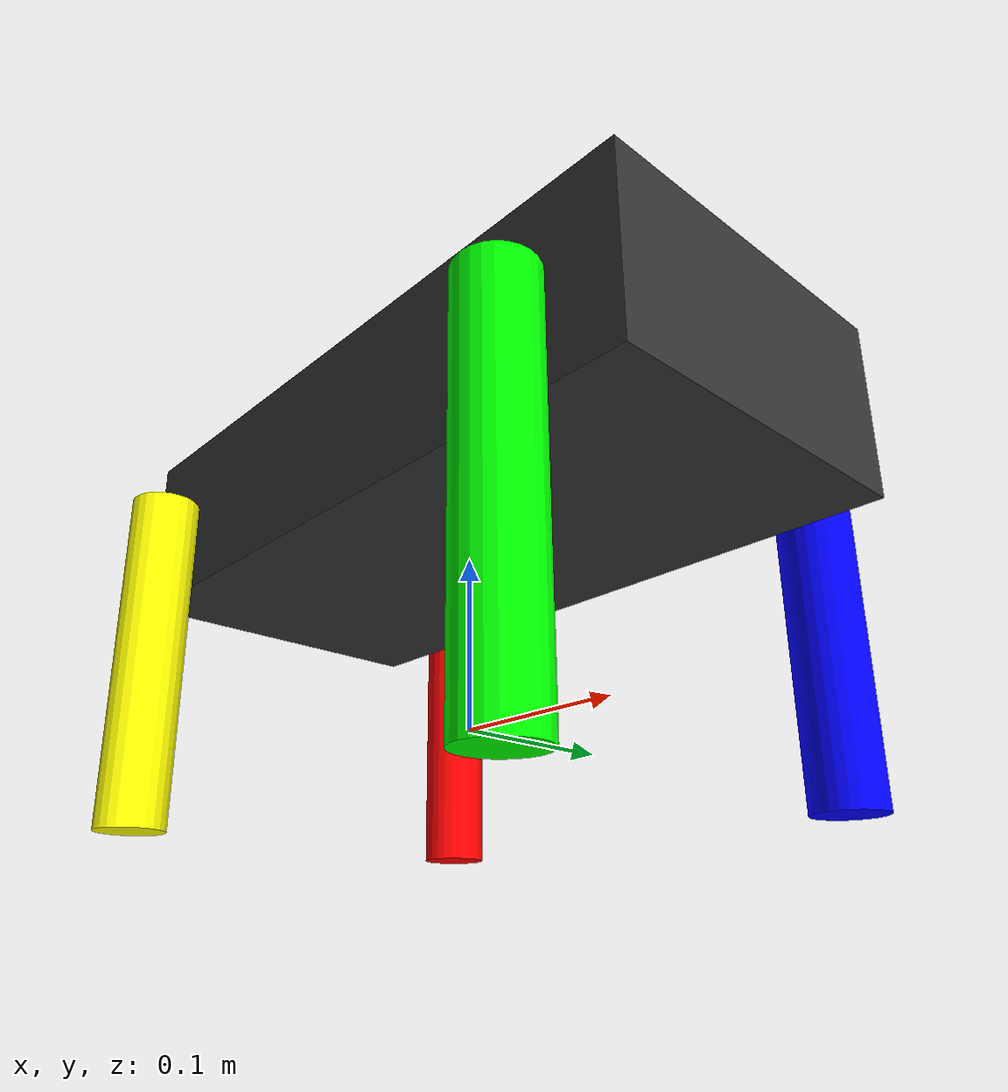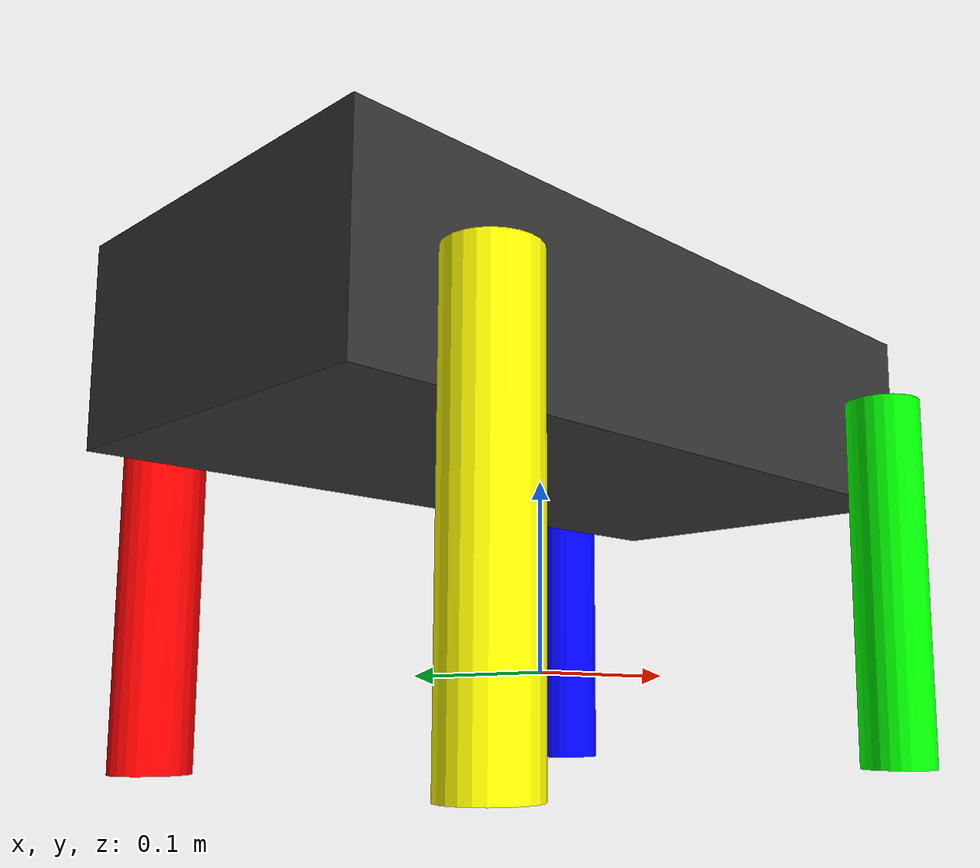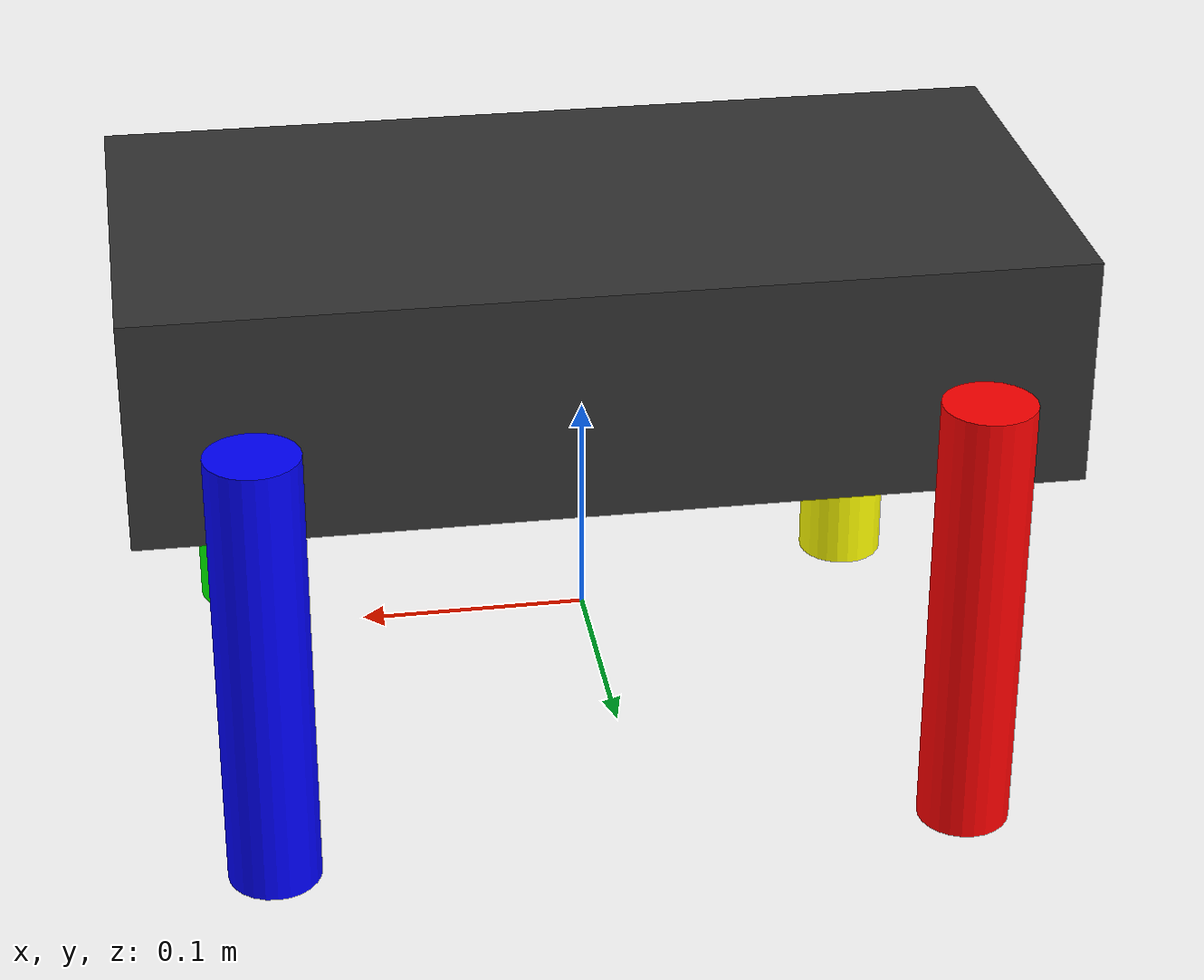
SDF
<?xml version="1.0" ?>
<sdf version="1.7">
  <model name="robot_dog">
    <static>false</static>

    <link name="base_link">
      <pose>0 0 0.15 0 0 0</pose>
      <inertial>
        <mass>3.0</mass>
        <inertia>
          <ixx>0.02</ixx><iyy>0.08</iyy><izz>0.09</izz>
          <ixy>0</ixy><ixz>0</ixz><iyz>0</iyz>
        </inertia>
      </inertial>
      <visual name="base_vis">
        <geometry><box><size>0.4 0.2 0.1</size></box></geometry>
        <material><ambient>0.2 0.2 0.2 1</ambient><diffuse>0.2 0.2 0.2 1</diffuse></material>
      </visual>
      <collision name="base_col">
        <geometry><box><size>0.4 0.2 0.1</size></box></geometry>
      </collision>
    </link>

    <!-- Front Left -->
    <joint name="joint_fl" type="revolute">
      <pose relative_to="base_link">0.15 0.12 0 0 0 0</pose>
      <parent>base_link</parent>
      <child>leg_fl</child>
      <axis>
        <xyz>0 1 0</xyz>
        <limit><lower>-1.57</lower><upper>1.57</upper><effort>100.0</effort><velocity>5.0</velocity></limit>
        <dynamics><damping>2.0</damping><friction>1.0</friction></dynamics>
      </axis>
    </joint>
    <link name="leg_fl">
      <pose relative_to="joint_fl">0 0 -0.1 0 0 0</pose>
      <inertial><mass>0.5</mass><inertia><ixx>0.002</ixx><iyy>0.002</iyy><izz>0.0001</izz></inertia></inertial>
      <visual name="vis_fl"><geometry><cylinder><radius>0.02</radius><length>0.2</length></cylinder></geometry><material><ambient>0 0 1 1</ambient></material></visual>
      <collision name="col_fl">
        <geometry><cylinder><radius>0.02</radius><length>0.2</length></cylinder></geometry>
        <surface><friction><ode><mu>1.5</mu><mu2>1.5</mu2></ode></friction></surface>
      </collision>
    </link>

    <!-- Front Right -->
    <joint name="joint_fr" type="revolute">
      <pose relative_to="base_link">0.15 -0.12 0 0 0 0</pose>
      <parent>base_link</parent><child>leg_fr</child>
      <axis>
        <xyz>0 1 0</xyz>
        <limit><lower>-1.57</lower><upper>1.57</upper><effort>100.0</effort><velocity>5.0</velocity></limit>
        <dynamics><damping>2.0</damping><friction>1.0</friction></dynamics>
      </axis>
    </joint>
    <link name="leg_fr">
      <pose relative_to="joint_fr">0 0 -0.1 0 0 0</pose>
      <inertial><mass>0.5</mass><inertia><ixx>0.002</ixx><iyy>0.002</iyy><izz>0.0001</izz></inertia></inertial>
      <visual name="vis_fr"><geometry><cylinder><radius>0.02</radius><length>0.2</length></cylinder></geometry><material><ambient>0 1 0 1</ambient></material></visual>
      <collision name="col_fr">
        <geometry><cylinder><radius>0.02</radius><length>0.2</length></cylinder></geometry>
        <surface><friction><ode><mu>1.5</mu><mu2>1.5</mu2></ode></friction></surface>
      </collision>
    </link>

    <!-- Back Left -->
    <joint name="joint_bl" type="revolute">
      <pose relative_to="base_link">-0.15 0.12 0 0 0 0</pose>
      <parent>base_link</parent><child>leg_bl</child>
      <axis>
        <xyz>0 1 0</xyz>
        <limit><lower>-1.57</lower><upper>1.57</upper><effort>100.0</effort><velocity>5.0</velocity></limit>
        <dynamics><damping>2.0</damping><friction>1.0</friction></dynamics>
      </axis>
    </joint>
    <link name="leg_bl">
      <pose relative_to="joint_bl">0 0 -0.1 0 0 0</pose>
      <inertial><mass>0.5</mass><inertia><ixx>0.002</ixx><iyy>0.002</iyy><izz>0.0001</izz></inertia></inertial>
      <visual name="vis_bl"><geometry><cylinder><radius>0.02</radius><length>0.2</length></cylinder></geometry><material><ambient>1 0 0 1</ambient></material></visual>
      <collision name="col_bl">
        <geometry><cylinder><radius>0.02</radius><length>0.2</length></cylinder></geometry>
        <surface><friction><ode><mu>1.5</mu><mu2>1.5</mu2></ode></friction></surface>
      </collision>
    </link>

    <!-- Back Right -->
    <joint name="joint_br" type="revolute">
      <pose relative_to="base_link">-0.15 -0.12 0 0 0 0</pose>
      <parent>base_link</parent><child>leg_br</child>
      <axis>
        <xyz>0 1 0</xyz>
        <limit><lower>-1.57</lower><upper>1.57</upper><effort>100.0</effort><velocity>5.0</velocity></limit>
        <dynamics><damping>2.0</damping><friction>1.0</friction></dynamics>
      </axis>
    </joint>
    <link name="leg_br">
      <pose relative_to="joint_br">0 0 -0.1 0 0 0</pose>
      <inertial><mass>0.5</mass><inertia><ixx>0.002</ixx><iyy>0.002</iyy><izz>0.0001</izz></inertia></inertial>
      <visual name="vis_br"><geometry><cylinder><radius>0.02</radius><length>0.2</length></cylinder></geometry><material><ambient>1 1 0 1</ambient></material></visual>
      <collision name="col_br">
        <geometry><cylinder><radius>0.02</radius><length>0.2</length></cylinder></geometry>
        <surface><friction><ode><mu>1.5</mu><mu2>1.5</mu2></ode></friction></surface>
      </collision>
    </link>

    <plugin filename="gz-sim-joint-position-controller-system" name="gz::sim::systems::JointPositionController">
      <joint_name>joint_fl</joint_name>
      <joint_name>joint_fr</joint_name>
      <joint_name>joint_bl</joint_name>
      <joint_name>joint_br</joint_name>
      <p_gain>5000.0</p_gain>
      <i_gain>10.0</i_gain>
      <d_gain>100.0</d_gain>
      <cmd_max>100.0</cmd_max>
      <cmd_min>-100.0</cmd_min>
    </plugin>
  </model>
</sdf>
